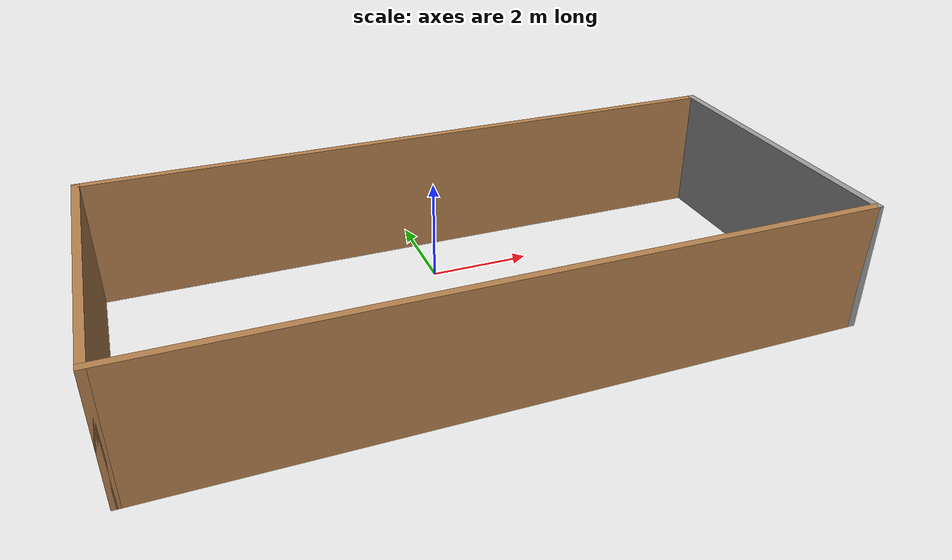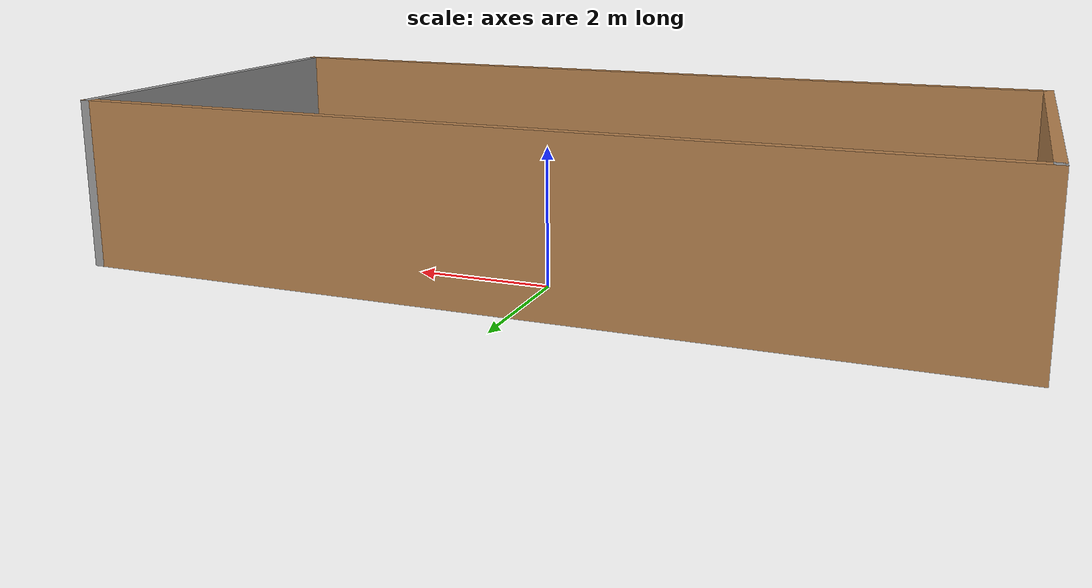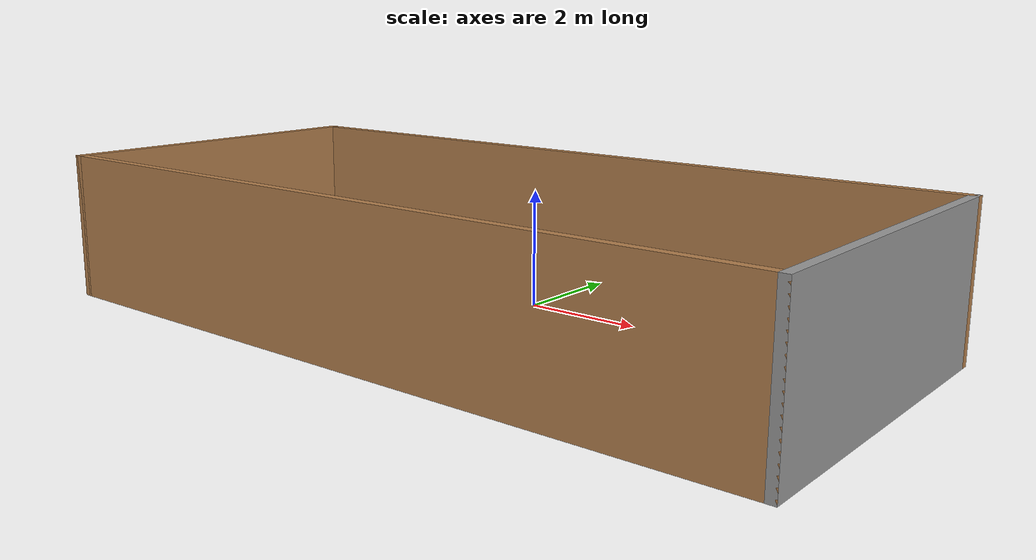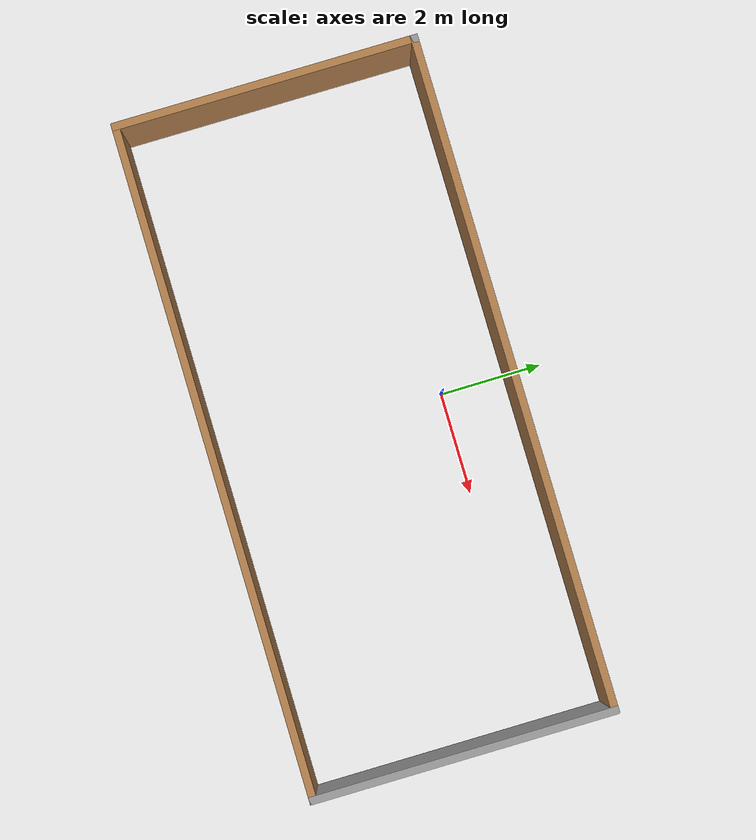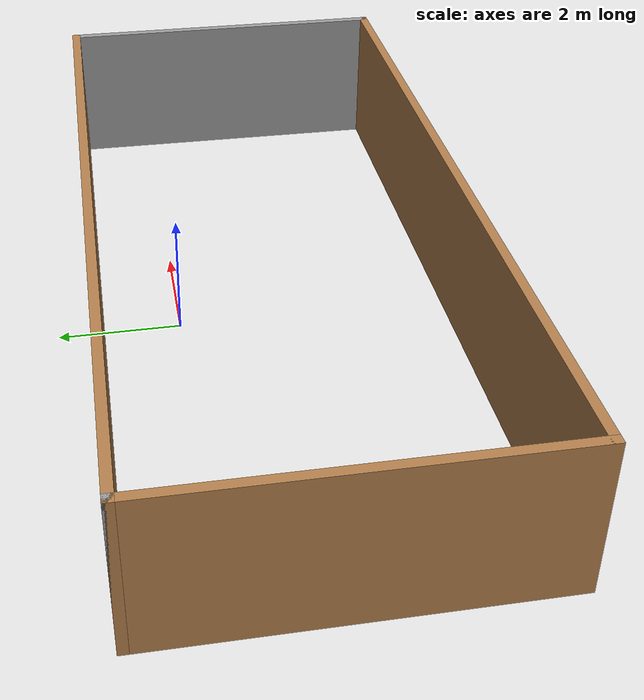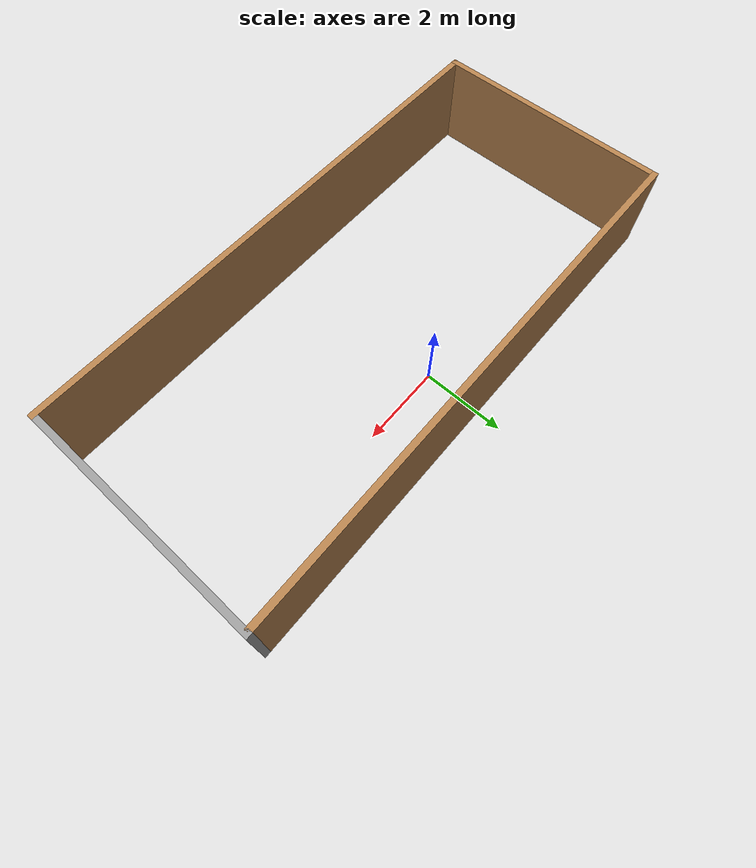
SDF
<?xml version='1.0'?>
<sdf version='1.7'>
  <model name='my_model'>
    <pose>0.11 -1.595 0 0 -0 0</pose>
    <link name='Wall_2'>
      <collision name='Wall_2_Collision'>
        <geometry>
          <box>
            <size>6 0.15 2.5</size>
          </box>
        </geometry>
        <pose>0 0 1.25 0 -0 0</pose>
      </collision>
      <visual name='Wall_2_Visual'>
        <pose>0 0 1.25 0 -0 0</pose>
        <geometry>
          <box>
            <size>6 0.15 2.5</size>
          </box>
        </geometry>
        <material>
          <script>
            <uri>file://media/materials/scripts/gazebo.material</uri>
            <name>Gazebo/Wood</name>
          </script>
          <ambient>1 1 1 1</ambient>
        </material>
        <meta>
          <layer>0</layer>
        </meta>
      </visual>
      <pose>-6.55 -0 0 0 -0 -1.5708</pose>
    </link>
    <link name='Wall_3'>
      <collision name='Wall_3_Collision'>
        <geometry>
          <box>
            <size>13.25 0.15 2.5</size>
          </box>
        </geometry>
        <pose>0 0 1.25 0 -0 0</pose>
      </collision>
      <visual name='Wall_3_Visual'>
        <pose>0 0 1.25 0 -0 0</pose>
        <geometry>
          <box>
            <size>13.25 0.15 2.5</size>
          </box>
        </geometry>
        <material>
          <script>
            <uri>file://media/materials/scripts/gazebo.material</uri>
            <name>Gazebo/Wood</name>
          </script>
          <ambient>1 1 1 1</ambient>
        </material>
        <meta>
          <layer>0</layer>
        </meta>
      </visual>
      <pose>0 -2.925 0 0 -0 0</pose>
    </link>
    <link name='Wall_4'>
      <collision name='Wall_4_Collision'>
        <geometry>
          <box>
            <size>6 0.15 2.5</size>
          </box>
        </geometry>
        <pose>0 0 1.25 0 -0 0</pose>
      </collision>
      <visual name='Wall_4_Visual'>
        <pose>0 0 1.25 0 -0 0</pose>
        <geometry>
          <box>
            <size>6 0.15 2.5</size>
          </box>
        </geometry>
        <material>
          <script>
            <uri>file://media/materials/scripts/gazebo.material</uri>
            <name>Gazebo/Grey</name>
          </script>
          <ambient>1 1 1 1</ambient>
        </material>
        <meta>
          <layer>0</layer>
        </meta>
      </visual>
      <pose>6.55 -0 0 0 -0 1.5708</pose>
    </link>
    <link name='Wall_5'>
      <collision name='Wall_5_Collision'>
        <geometry>
          <box>
            <size>13.25 0.15 2.5</size>
          </box>
        </geometry>
        <pose>0 0 1.25 0 -0 0</pose>
      </collision>
      <visual name='Wall_5_Visual'>
        <pose>0 0 1.25 0 -0 0</pose>
        <geometry>
          <box>
            <size>13.25 0.15 2.5</size>
          </box>
        </geometry>
        <material>
          <script>
            <uri>file://media/materials/scripts/gazebo.material</uri>
            <name>Gazebo/Wood</name>
          </script>
          <ambient>1 1 1 1</ambient>
        </material>
        <meta>
          <layer>0</layer>
        </meta>
      </visual>
      <pose>0 2.925 0 0 -0 3.14159</pose>
    </link>
    <link name='Wall_6'>
      <collision name='Wall_6_Collision'>
        <geometry>
          <box>
            <size>0.15 0.15 2.5</size>
          </box>
        </geometry>
        <pose>0 0 1.25 0 -0 0</pose>
      </collision>
      <visual name='Wall_6_Visual'>
        <pose>0 0 1.25 0 -0 0</pose>
        <geometry>
          <box>
            <size>0.15 0.15 2.5</size>
          </box>
        </geometry>
        <material>
          <script>
            <uri>file://media/materials/scripts/gazebo.material</uri>
            <name>Gazebo/Grey</name>
          </script>
          <ambient>1 1 1 1</ambient>
        </material>
        <meta>
          <layer>0</layer>
        </meta>
      </visual>
      <pose>-6.55 2.925 0 0 -0 0</pose>
    </link>
    <static>1</static>
  </model>
</sdf>
